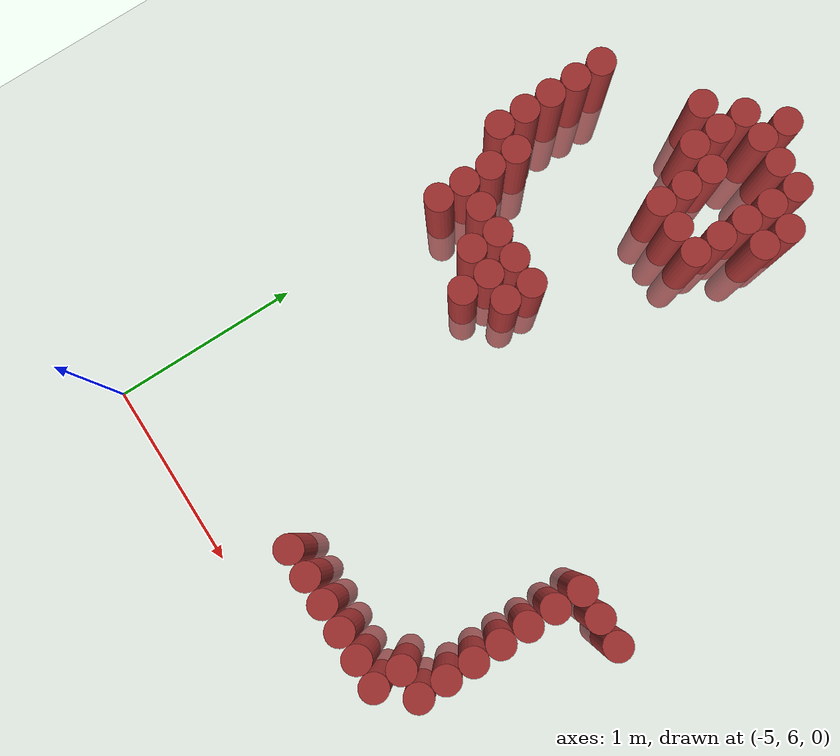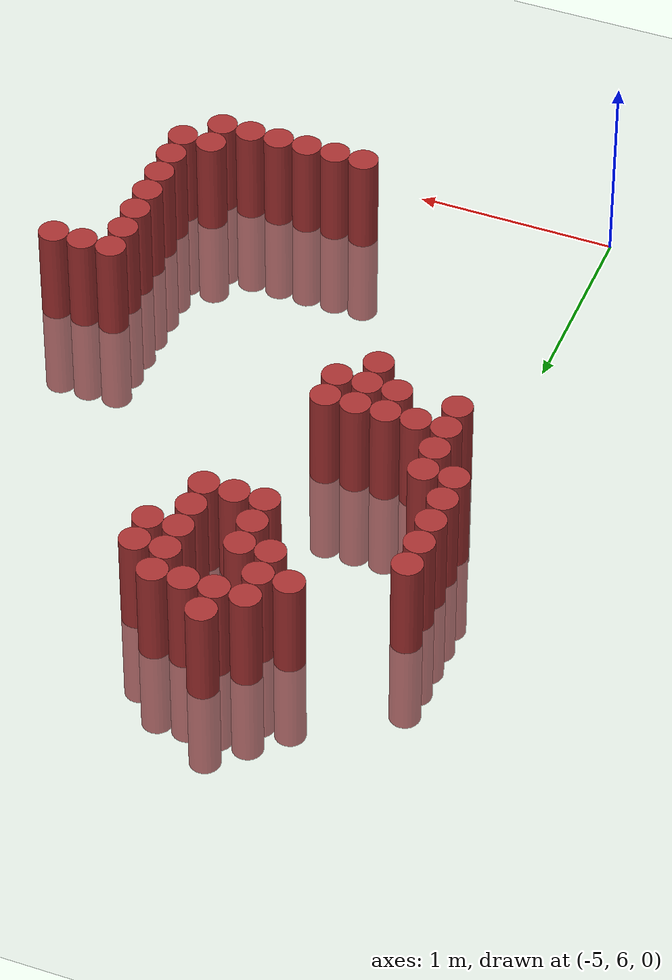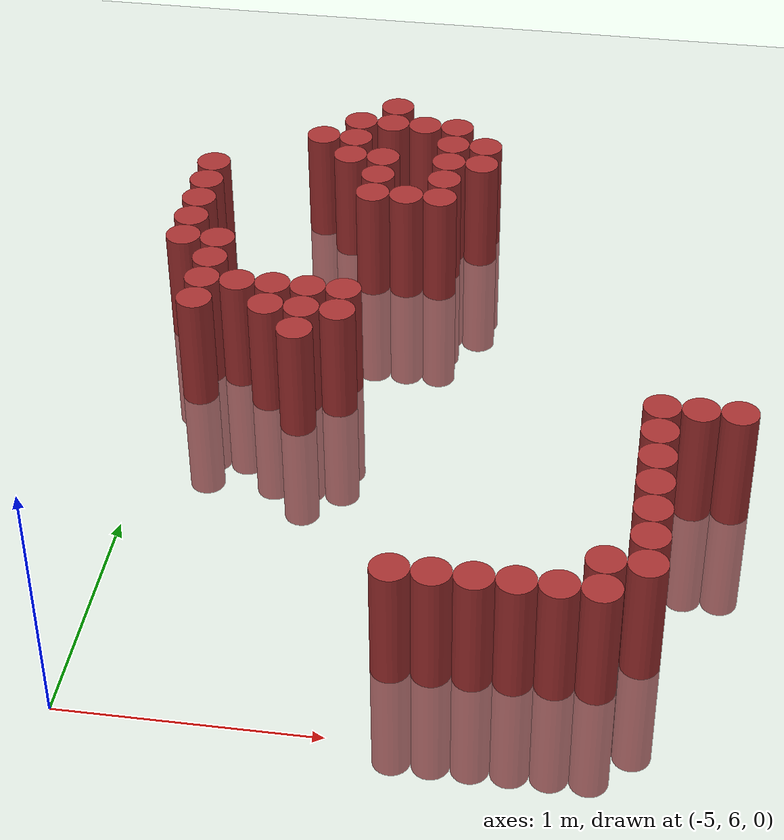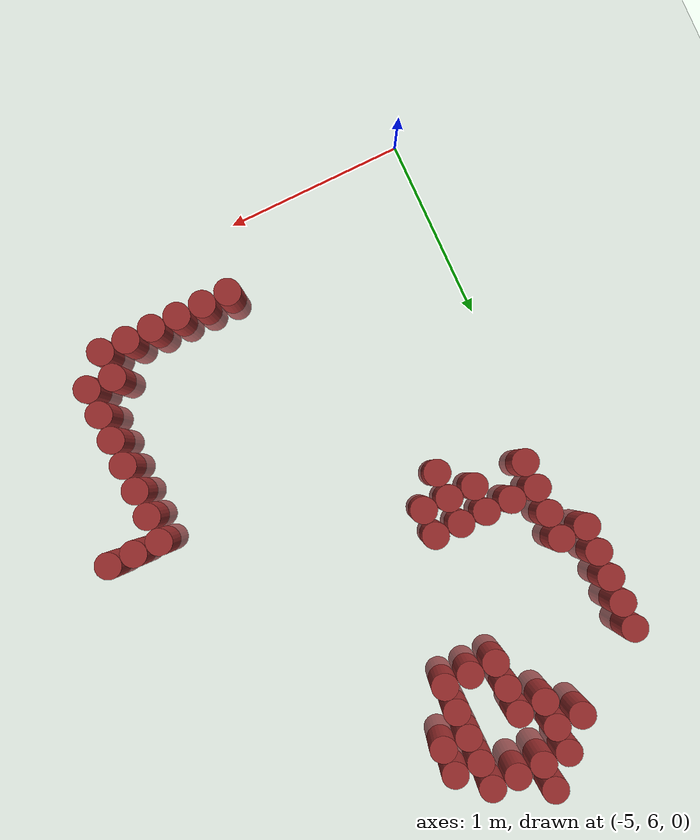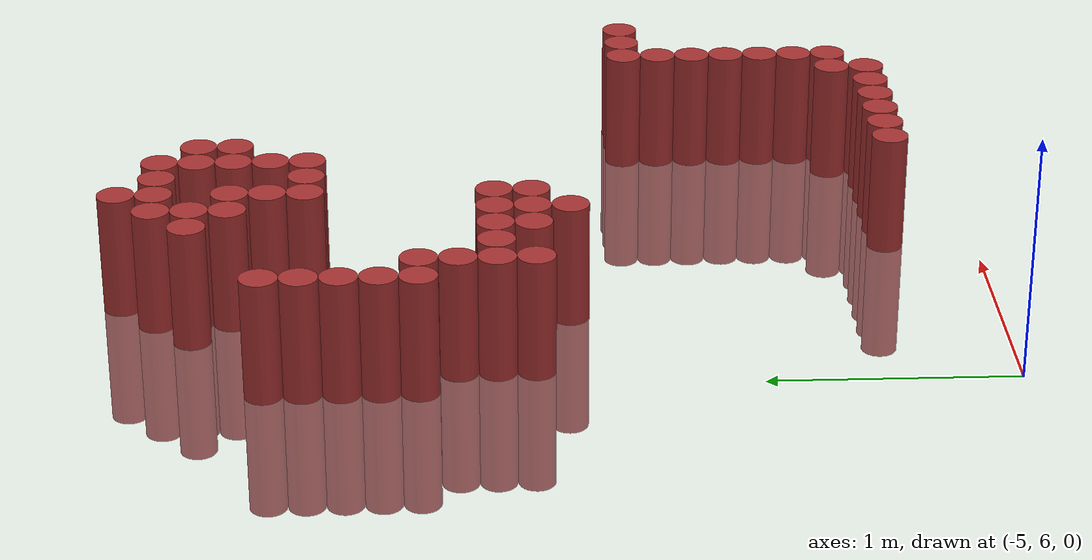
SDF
<sdf version="1.6">
 <world name="default">
  <model name="ground_plane">
   <static>1</static>
   <link name="link">
    <collision name="collision">
     <geometry><plane><normal>0 0 1</normal><size>100 100</size></plane></geometry>
     <surface><friction><ode><mu>100</mu><mu2>50</mu2></ode></friction></surface>
    </collision>
    <visual name="visual">
     <cast_shadows>0</cast_shadows>
     <geometry><plane><normal>0 0 1</normal><size>100 100</size></plane></geometry>
     <material>
      <script><uri>file://media/materials/scripts/gazebo.material</uri><name>Gazebo/Grey</name></script>
     </material>
    </visual>
   </link>
  </model>
  <model name="unit_cylinder_262">
   <static>1</static>
   <pose>-5.025000 8.325000 0.000000 0.000000 0.000000 0.000000</pose>
   <link name="link">
    <inertial>
     <mass>1</mass>
     <inertia><ixx>0.145833</ixx><ixy>0</ixy><ixz>0</ixz><iyy>0.145833</iyy><iyz>0</iyz><izz>0.125</izz></inertia>
    </inertial>
    <collision name="collision">
     <geometry><cylinder><radius>0.075000</radius><length>1</length></cylinder></geometry>
    </collision>
    <visual name="visual">
     <geometry><cylinder><radius>0.075000</radius><length>1</length></cylinder></geometry>
     <material>
      <ambient>0.648000 0.192000 0.192000 1</ambient>
      <diffuse>0.648000 0.192000 0.192000 1</diffuse>
     </material>
     <material>
      <script><name>Gazebo/Grey</name><uri>file://media/materials/scripts/gazebo.material</uri></script>
     </material>
    </visual>
   </link>
  </model>
  <model name="unit_cylinder_263">
   <static>1</static>
   <pose>-5.025000 8.475000 0.000000 0.000000 0.000000 0.000000</pose>
   <link name="link">
    <inertial>
     <mass>1</mass>
     <inertia><ixx>0.145833</ixx><ixy>0</ixy><ixz>0</ixz><iyy>0.145833</iyy><iyz>0</iyz><izz>0.125</izz></inertia>
    </inertial>
    <collision name="collision">
     <geometry><cylinder><radius>0.075000</radius><length>1</length></cylinder></geometry>
    </collision>
    <visual name="visual">
     <geometry><cylinder><radius>0.075000</radius><length>1</length></cylinder></geometry>
     <material>
      <ambient>0.648000 0.192000 0.192000 1</ambient>
      <diffuse>0.648000 0.192000 0.192000 1</diffuse>
     </material>
     <material>
      <script><name>Gazebo/Grey</name><uri>file://media/materials/scripts/gazebo.material</uri></script>
     </material>
    </visual>
   </link>
  </model>
  <model name="unit_cylinder_264">
   <static>1</static>
   <pose>-5.025000 8.625000 0.000000 0.000000 0.000000 0.000000</pose>
   <link name="link">
    <inertial>
     <mass>1</mass>
     <inertia><ixx>0.145833</ixx><ixy>0</ixy><ixz>0</ixz><iyy>0.145833</iyy><iyz>0</iyz><izz>0.125</izz></inertia>
    </inertial>
    <collision name="collision">
     <geometry><cylinder><radius>0.075000</radius><length>1</length></cylinder></geometry>
    </collision>
    <visual name="visual">
     <geometry><cylinder><radius>0.075000</radius><length>1</length></cylinder></geometry>
     <material>
      <ambient>0.648000 0.192000 0.192000 1</ambient>
      <diffuse>0.648000 0.192000 0.192000 1</diffuse>
     </material>
     <material>
      <script><name>Gazebo/Grey</name><uri>file://media/materials/scripts/gazebo.material</uri></script>
     </material>
    </visual>
   </link>
  </model>
  <model name="unit_cylinder_265">
   <static>1</static>
   <pose>-5.025000 8.775000 0.000000 0.000000 0.000000 0.000000</pose>
   <link name="link">
    <inertial>
     <mass>1</mass>
     <inertia><ixx>0.145833</ixx><ixy>0</ixy><ixz>0</ixz><iyy>0.145833</iyy><iyz>0</iyz><izz>0.125</izz></inertia>
    </inertial>
    <collision name="collision">
     <geometry><cylinder><radius>0.075000</radius><length>1</length></cylinder></geometry>
    </collision>
    <visual name="visual">
     <geometry><cylinder><radius>0.075000</radius><length>1</length></cylinder></geometry>
     <material>
      <ambient>0.648000 0.192000 0.192000 1</ambient>
      <diffuse>0.648000 0.192000 0.192000 1</diffuse>
     </material>
     <material>
      <script><name>Gazebo/Grey</name><uri>file://media/materials/scripts/gazebo.material</uri></script>
     </material>
    </visual>
   </link>
  </model>
  <model name="unit_cylinder_266">
   <static>1</static>
   <pose>-5.025000 8.925000 0.000000 0.000000 0.000000 0.000000</pose>
   <link name="link">
    <inertial>
     <mass>1</mass>
     <inertia><ixx>0.145833</ixx><ixy>0</ixy><ixz>0</ixz><iyy>0.145833</iyy><iyz>0</iyz><izz>0.125</izz></inertia>
    </inertial>
    <collision name="collision">
     <geometry><cylinder><radius>0.075000</radius><length>1</length></cylinder></geometry>
    </collision>
    <visual name="visual">
     <geometry><cylinder><radius>0.075000</radius><length>1</length></cylinder></geometry>
     <material>
      <ambient>0.648000 0.192000 0.192000 1</ambient>
      <diffuse>0.648000 0.192000 0.192000 1</diffuse>
     </material>
     <material>
      <script><name>Gazebo/Grey</name><uri>file://media/materials/scripts/gazebo.material</uri></script>
     </material>
    </visual>
   </link>
  </model>
  <model name="unit_cylinder_267">
   <static>1</static>
   <pose>-4.875000 7.875000 0.000000 0.000000 0.000000 0.000000</pose>
   <link name="link">
    <inertial>
     <mass>1</mass>
     <inertia><ixx>0.145833</ixx><ixy>0</ixy><ixz>0</ixz><iyy>0.145833</iyy><iyz>0</iyz><izz>0.125</izz></inertia>
    </inertial>
    <collision name="collision">
     <geometry><cylinder><radius>0.075000</radius><length>1</length></cylinder></geometry>
    </collision>
    <visual name="visual">
     <geometry><cylinder><radius>0.075000</radius><length>1</length></cylinder></geometry>
     <material>
      <ambient>0.648000 0.192000 0.192000 1</ambient>
      <diffuse>0.648000 0.192000 0.192000 1</diffuse>
     </material>
     <material>
      <script><name>Gazebo/Grey</name><uri>file://media/materials/scripts/gazebo.material</uri></script>
     </material>
    </visual>
   </link>
  </model>
  <model name="unit_cylinder_268">
   <static>1</static>
   <pose>-4.875000 8.025000 0.000000 0.000000 0.000000 0.000000</pose>
   <link name="link">
    <inertial>
     <mass>1</mass>
     <inertia><ixx>0.145833</ixx><ixy>0</ixy><ixz>0</ixz><iyy>0.145833</iyy><iyz>0</iyz><izz>0.125</izz></inertia>
    </inertial>
    <collision name="collision">
     <geometry><cylinder><radius>0.075000</radius><length>1</length></cylinder></geometry>
    </collision>
    <visual name="visual">
     <geometry><cylinder><radius>0.075000</radius><length>1</length></cylinder></geometry>
     <material>
      <ambient>0.648000 0.192000 0.192000 1</ambient>
      <diffuse>0.648000 0.192000 0.192000 1</diffuse>
     </material>
     <material>
      <script><name>Gazebo/Grey</name><uri>file://media/materials/scripts/gazebo.material</uri></script>
     </material>
    </visual>
   </link>
  </model>
  <model name="unit_cylinder_269">
   <static>1</static>
   <pose>-4.875000 8.175000 0.000000 0.000000 0.000000 0.000000</pose>
   <link name="link">
    <inertial>
     <mass>1</mass>
     <inertia><ixx>0.145833</ixx><ixy>0</ixy><ixz>0</ixz><iyy>0.145833</iyy><iyz>0</iyz><izz>0.125</izz></inertia>
    </inertial>
    <collision name="collision">
     <geometry><cylinder><radius>0.075000</radius><length>1</length></cylinder></geometry>
    </collision>
    <visual name="visual">
     <geometry><cylinder><radius>0.075000</radius><length>1</length></cylinder></geometry>
     <material>
      <ambient>0.648000 0.192000 0.192000 1</ambient>
      <diffuse>0.648000 0.192000 0.192000 1</diffuse>
     </material>
     <material>
      <script><name>Gazebo/Grey</name><uri>file://media/materials/scripts/gazebo.material</uri></script>
     </material>
    </visual>
   </link>
  </model>
  <model name="unit_cylinder_270">
   <static>1</static>
   <pose>-4.875000 8.325000 0.000000 0.000000 0.000000 0.000000</pose>
   <link name="link">
    <inertial>
     <mass>1</mass>
     <inertia><ixx>0.145833</ixx><ixy>0</ixy><ixz>0</ixz><iyy>0.145833</iyy><iyz>0</iyz><izz>0.125</izz></inertia>
    </inertial>
    <collision name="collision">
     <geometry><cylinder><radius>0.075000</radius><length>1</length></cylinder></geometry>
    </collision>
    <visual name="visual">
     <geometry><cylinder><radius>0.075000</radius><length>1</length></cylinder></geometry>
     <material>
      <ambient>0.648000 0.192000 0.192000 1</ambient>
      <diffuse>0.648000 0.192000 0.192000 1</diffuse>
     </material>
     <material>
      <script><name>Gazebo/Grey</name><uri>file://media/materials/scripts/gazebo.material</uri></script>
     </material>
    </visual>
   </link>
  </model>
  <model name="unit_cylinder_271">
   <static>1</static>
   <pose>-4.725000 8.025000 0.000000 0.000000 0.000000 0.000000</pose>
   <link name="link">
    <inertial>
     <mass>1</mass>
     <inertia><ixx>0.145833</ixx><ixy>0</ixy><ixz>0</ixz><iyy>0.145833</iyy><iyz>0</iyz><izz>0.125</izz></inertia>
    </inertial>
    <collision name="collision">
     <geometry><cylinder><radius>0.075000</radius><length>1</length></cylinder></geometry>
    </collision>
    <visual name="visual">
     <geometry><cylinder><radius>0.075000</radius><length>1</length></cylinder></geometry>
     <material>
      <ambient>0.648000 0.192000 0.192000 1</ambient>
      <diffuse>0.648000 0.192000 0.192000 1</diffuse>
     </material>
     <material>
      <script><name>Gazebo/Grey</name><uri>file://media/materials/scripts/gazebo.material</uri></script>
     </material>
    </visual>
   </link>
  </model>
  <model name="unit_cylinder_272">
   <static>1</static>
   <pose>-4.575000 7.875000 0.000000 0.000000 0.000000 0.000000</pose>
   <link name="link">
    <inertial>
     <mass>1</mass>
     <inertia><ixx>0.145833</ixx><ixy>0</ixy><ixz>0</ixz><iyy>0.145833</iyy><iyz>0</iyz><izz>0.125</izz></inertia>
    </inertial>
    <collision name="collision">
     <geometry><cylinder><radius>0.075000</radius><length>1</length></cylinder></geometry>
    </collision>
    <visual name="visual">
     <geometry><cylinder><radius>0.075000</radius><length>1</length></cylinder></geometry>
     <material>
      <ambient>0.648000 0.192000 0.192000 1</ambient>
      <diffuse>0.648000 0.192000 0.192000 1</diffuse>
     </material>
     <material>
      <script><name>Gazebo/Grey</name><uri>file://media/materials/scripts/gazebo.material</uri></script>
     </material>
    </visual>
   </link>
  </model>
  <model name="unit_cylinder_273">
   <static>1</static>
   <pose>-4.575000 8.025000 0.000000 0.000000 0.000000 0.000000</pose>
   <link name="link">
    <inertial>
     <mass>1</mass>
     <inertia><ixx>0.145833</ixx><ixy>0</ixy><ixz>0</ixz><iyy>0.145833</iyy><iyz>0</iyz><izz>0.125</izz></inertia>
    </inertial>
    <collision name="collision">
     <geometry><cylinder><radius>0.075000</radius><length>1</length></cylinder></geometry>
    </collision>
    <visual name="visual">
     <geometry><cylinder><radius>0.075000</radius><length>1</length></cylinder></geometry>
     <material>
      <ambient>0.648000 0.192000 0.192000 1</ambient>
      <diffuse>0.648000 0.192000 0.192000 1</diffuse>
     </material>
     <material>
      <script><name>Gazebo/Grey</name><uri>file://media/materials/scripts/gazebo.material</uri></script>
     </material>
    </visual>
   </link>
  </model>
  <model name="unit_cylinder_274">
   <static>1</static>
   <pose>-4.575000 9.225000 0.000000 0.000000 0.000000 0.000000</pose>
   <link name="link">
    <inertial>
     <mass>1</mass>
     <inertia><ixx>0.145833</ixx><ixy>0</ixy><ixz>0</ixz><iyy>0.145833</iyy><iyz>0</iyz><izz>0.125</izz></inertia>
    </inertial>
    <collision name="collision">
     <geometry><cylinder><radius>0.075000</radius><length>1</length></cylinder></geometry>
    </collision>
    <visual name="visual">
     <geometry><cylinder><radius>0.075000</radius><length>1</length></cylinder></geometry>
     <material>
      <ambient>0.648000 0.192000 0.192000 1</ambient>
      <diffuse>0.648000 0.192000 0.192000 1</diffuse>
     </material>
     <material>
      <script><name>Gazebo/Grey</name><uri>file://media/materials/scripts/gazebo.material</uri></script>
     </material>
    </visual>
   </link>
  </model>
  <model name="unit_cylinder_275">
   <static>1</static>
   <pose>-4.425000 7.725000 0.000000 0.000000 0.000000 0.000000</pose>
   <link name="link">
    <inertial>
     <mass>1</mass>
     <inertia><ixx>0.145833</ixx><ixy>0</ixy><ixz>0</ixz><iyy>0.145833</iyy><iyz>0</iyz><izz>0.125</izz></inertia>
    </inertial>
    <collision name="collision">
     <geometry><cylinder><radius>0.075000</radius><length>1</length></cylinder></geometry>
    </collision>
    <visual name="visual">
     <geometry><cylinder><radius>0.075000</radius><length>1</length></cylinder></geometry>
     <material>
      <ambient>0.648000 0.192000 0.192000 1</ambient>
      <diffuse>0.648000 0.192000 0.192000 1</diffuse>
     </material>
     <material>
      <script><name>Gazebo/Grey</name><uri>file://media/materials/scripts/gazebo.material</uri></script>
     </material>
    </visual>
   </link>
  </model>
  <model name="unit_cylinder_276">
   <static>1</static>
   <pose>-4.425000 7.875000 0.000000 0.000000 0.000000 0.000000</pose>
   <link name="link">
    <inertial>
     <mass>1</mass>
     <inertia><ixx>0.145833</ixx><ixy>0</ixy><ixz>0</ixz><iyy>0.145833</iyy><iyz>0</iyz><izz>0.125</izz></inertia>
    </inertial>
    <collision name="collision">
     <geometry><cylinder><radius>0.075000</radius><length>1</length></cylinder></geometry>
    </collision>
    <visual name="visual">
     <geometry><cylinder><radius>0.075000</radius><length>1</length></cylinder></geometry>
     <material>
      <ambient>0.648000 0.192000 0.192000 1</ambient>
      <diffuse>0.648000 0.192000 0.192000 1</diffuse>
     </material>
     <material>
      <script><name>Gazebo/Grey</name><uri>file://media/materials/scripts/gazebo.material</uri></script>
     </material>
    </visual>
   </link>
  </model>
  <model name="unit_cylinder_277">
   <static>1</static>
   <pose>-4.425000 8.025000 0.000000 0.000000 0.000000 0.000000</pose>
   <link name="link">
    <inertial>
     <mass>1</mass>
     <inertia><ixx>0.145833</ixx><ixy>0</ixy><ixz>0</ixz><iyy>0.145833</iyy><iyz>0</iyz><izz>0.125</izz></inertia>
    </inertial>
    <collision name="collision">
     <geometry><cylinder><radius>0.075000</radius><length>1</length></cylinder></geometry>
    </collision>
    <visual name="visual">
     <geometry><cylinder><radius>0.075000</radius><length>1</length></cylinder></geometry>
     <material>
      <ambient>0.648000 0.192000 0.192000 1</ambient>
      <diffuse>0.648000 0.192000 0.192000 1</diffuse>
     </material>
     <material>
      <script><name>Gazebo/Grey</name><uri>file://media/materials/scripts/gazebo.material</uri></script>
     </material>
    </visual>
   </link>
  </model>
  <model name="unit_cylinder_278">
   <static>1</static>
   <pose>-4.425000 9.075000 0.000000 0.000000 0.000000 0.000000</pose>
   <link name="link">
    <inertial>
     <mass>1</mass>
     <inertia><ixx>0.145833</ixx><ixy>0</ixy><ixz>0</ixz><iyy>0.145833</iyy><iyz>0</iyz><izz>0.125</izz></inertia>
    </inertial>
    <collision name="collision">
     <geometry><cylinder><radius>0.075000</radius><length>1</length></cylinder></geometry>
    </collision>
    <visual name="visual">
     <geometry><cylinder><radius>0.075000</radius><length>1</length></cylinder></geometry>
     <material>
      <ambient>0.648000 0.192000 0.192000 1</ambient>
      <diffuse>0.648000 0.192000 0.192000 1</diffuse>
     </material>
     <material>
      <script><name>Gazebo/Grey</name><uri>file://media/materials/scripts/gazebo.material</uri></script>
     </material>
    </visual>
   </link>
  </model>
  <model name="unit_cylinder_279">
   <static>1</static>
   <pose>-4.425000 9.225000 0.000000 0.000000 0.000000 0.000000</pose>
   <link name="link">
    <inertial>
     <mass>1</mass>
     <inertia><ixx>0.145833</ixx><ixy>0</ixy><ixz>0</ixz><iyy>0.145833</iyy><iyz>0</iyz><izz>0.125</izz></inertia>
    </inertial>
    <collision name="collision">
     <geometry><cylinder><radius>0.075000</radius><length>1</length></cylinder></geometry>
    </collision>
    <visual name="visual">
     <geometry><cylinder><radius>0.075000</radius><length>1</length></cylinder></geometry>
     <material>
      <ambient>0.648000 0.192000 0.192000 1</ambient>
      <diffuse>0.648000 0.192000 0.192000 1</diffuse>
     </material>
     <material>
      <script><name>Gazebo/Grey</name><uri>file://media/materials/scripts/gazebo.material</uri></script>
     </material>
    </visual>
   </link>
  </model>
  <model name="unit_cylinder_280">
   <static>1</static>
   <pose>-4.425000 9.375000 0.000000 0.000000 0.000000 0.000000</pose>
   <link name="link">
    <inertial>
     <mass>1</mass>
     <inertia><ixx>0.145833</ixx><ixy>0</ixy><ixz>0</ixz><iyy>0.145833</iyy><iyz>0</iyz><izz>0.125</izz></inertia>
    </inertial>
    <collision name="collision">
     <geometry><cylinder><radius>0.075000</radius><length>1</length></cylinder></geometry>
    </collision>
    <visual name="visual">
     <geometry><cylinder><radius>0.075000</radius><length>1</length></cylinder></geometry>
     <material>
      <ambient>0.648000 0.192000 0.192000 1</ambient>
      <diffuse>0.648000 0.192000 0.192000 1</diffuse>
     </material>
     <material>
      <script><name>Gazebo/Grey</name><uri>file://media/materials/scripts/gazebo.material</uri></script>
     </material>
    </visual>
   </link>
  </model>
  <model name="unit_cylinder_283">
   <static>1</static>
   <pose>-4.275000 7.875000 0.000000 0.000000 0.000000 0.000000</pose>
   <link name="link">
    <inertial>
     <mass>1</mass>
     <inertia><ixx>0.145833</ixx><ixy>0</ixy><ixz>0</ixz><iyy>0.145833</iyy><iyz>0</iyz><izz>0.125</izz></inertia>
    </inertial>
    <collision name="collision">
     <geometry><cylinder><radius>0.075000</radius><length>1</length></cylinder></geometry>
    </collision>
    <visual name="visual">
     <geometry><cylinder><radius>0.075000</radius><length>1</length></cylinder></geometry>
     <material>
      <ambient>0.648000 0.192000 0.192000 1</ambient>
      <diffuse>0.648000 0.192000 0.192000 1</diffuse>
     </material>
     <material>
      <script><name>Gazebo/Grey</name><uri>file://media/materials/scripts/gazebo.material</uri></script>
     </material>
    </visual>
   </link>
  </model>
  <model name="unit_cylinder_284">
   <static>1</static>
   <pose>-4.275000 8.025000 0.000000 0.000000 0.000000 0.000000</pose>
   <link name="link">
    <inertial>
     <mass>1</mass>
     <inertia><ixx>0.145833</ixx><ixy>0</ixy><ixz>0</ixz><iyy>0.145833</iyy><iyz>0</iyz><izz>0.125</izz></inertia>
    </inertial>
    <collision name="collision">
     <geometry><cylinder><radius>0.075000</radius><length>1</length></cylinder></geometry>
    </collision>
    <visual name="visual">
     <geometry><cylinder><radius>0.075000</radius><length>1</length></cylinder></geometry>
     <material>
      <ambient>0.648000 0.192000 0.192000 1</ambient>
      <diffuse>0.648000 0.192000 0.192000 1</diffuse>
     </material>
     <material>
      <script><name>Gazebo/Grey</name><uri>file://media/materials/scripts/gazebo.material</uri></script>
     </material>
    </visual>
   </link>
  </model>
  <model name="unit_cylinder_285">
   <static>1</static>
   <pose>-4.275000 8.775000 0.000000 0.000000 0.000000 0.000000</pose>
   <link name="link">
    <inertial>
     <mass>1</mass>
     <inertia><ixx>0.145833</ixx><ixy>0</ixy><ixz>0</ixz><iyy>0.145833</iyy><iyz>0</iyz><izz>0.125</izz></inertia>
    </inertial>
    <collision name="collision">
     <geometry><cylinder><radius>0.075000</radius><length>1</length></cylinder></geometry>
    </collision>
    <visual name="visual">
     <geometry><cylinder><radius>0.075000</radius><length>1</length></cylinder></geometry>
     <material>
      <ambient>0.648000 0.192000 0.192000 1</ambient>
      <diffuse>0.648000 0.192000 0.192000 1</diffuse>
     </material>
     <material>
      <script><name>Gazebo/Grey</name><uri>file://media/materials/scripts/gazebo.material</uri></script>
     </material>
    </visual>
   </link>
  </model>
  <model name="unit_cylinder_286">
   <static>1</static>
   <pose>-4.275000 8.925000 0.000000 0.000000 0.000000 0.000000</pose>
   <link name="link">
    <inertial>
     <mass>1</mass>
     <inertia><ixx>0.145833</ixx><ixy>0</ixy><ixz>0</ixz><iyy>0.145833</iyy><iyz>0</iyz><izz>0.125</izz></inertia>
    </inertial>
    <collision name="collision">
     <geometry><cylinder><radius>0.075000</radius><length>1</length></cylinder></geometry>
    </collision>
    <visual name="visual">
     <geometry><cylinder><radius>0.075000</radius><length>1</length></cylinder></geometry>
     <material>
      <ambient>0.648000 0.192000 0.192000 1</ambient>
      <diffuse>0.648000 0.192000 0.192000 1</diffuse>
     </material>
     <material>
      <script><name>Gazebo/Grey</name><uri>file://media/materials/scripts/gazebo.material</uri></script>
     </material>
    </visual>
   </link>
  </model>
  <model name="unit_cylinder_287">
   <static>1</static>
   <pose>-4.275000 9.075000 0.000000 0.000000 0.000000 0.000000</pose>
   <link name="link">
    <inertial>
     <mass>1</mass>
     <inertia><ixx>0.145833</ixx><ixy>0</ixy><ixz>0</ixz><iyy>0.145833</iyy><iyz>0</iyz><izz>0.125</izz></inertia>
    </inertial>
    <collision name="collision">
     <geometry><cylinder><radius>0.075000</radius><length>1</length></cylinder></geometry>
    </collision>
    <visual name="visual">
     <geometry><cylinder><radius>0.075000</radius><length>1</length></cylinder></geometry>
     <material>
      <ambient>0.648000 0.192000 0.192000 1</ambient>
      <diffuse>0.648000 0.192000 0.192000 1</diffuse>
     </material>
     <material>
      <script><name>Gazebo/Grey</name><uri>file://media/materials/scripts/gazebo.material</uri></script>
     </material>
    </visual>
   </link>
  </model>
  <model name="unit_cylinder_288">
   <static>1</static>
   <pose>-4.275000 9.375000 0.000000 0.000000 0.000000 0.000000</pose>
   <link name="link">
    <inertial>
     <mass>1</mass>
     <inertia><ixx>0.145833</ixx><ixy>0</ixy><ixz>0</ixz><iyy>0.145833</iyy><iyz>0</iyz><izz>0.125</izz></inertia>
    </inertial>
    <collision name="collision">
     <geometry><cylinder><radius>0.075000</radius><length>1</length></cylinder></geometry>
    </collision>
    <visual name="visual">
     <geometry><cylinder><radius>0.075000</radius><length>1</length></cylinder></geometry>
     <material>
      <ambient>0.648000 0.192000 0.192000 1</ambient>
      <diffuse>0.648000 0.192000 0.192000 1</diffuse>
     </material>
     <material>
      <script><name>Gazebo/Grey</name><uri>file://media/materials/scripts/gazebo.material</uri></script>
     </material>
    </visual>
   </link>
  </model>
  <model name="unit_cylinder_289">
   <static>1</static>
   <pose>-4.275000 9.525000 0.000000 0.000000 0.000000 0.000000</pose>
   <link name="link">
    <inertial>
     <mass>1</mass>
     <inertia><ixx>0.145833</ixx><ixy>0</ixy><ixz>0</ixz><iyy>0.145833</iyy><iyz>0</iyz><izz>0.125</izz></inertia>
    </inertial>
    <collision name="collision">
     <geometry><cylinder><radius>0.075000</radius><length>1</length></cylinder></geometry>
    </collision>
    <visual name="visual">
     <geometry><cylinder><radius>0.075000</radius><length>1</length></cylinder></geometry>
     <material>
      <ambient>0.648000 0.192000 0.192000 1</ambient>
      <diffuse>0.648000 0.192000 0.192000 1</diffuse>
     </material>
     <material>
      <script><name>Gazebo/Grey</name><uri>file://media/materials/scripts/gazebo.material</uri></script>
     </material>
    </visual>
   </link>
  </model>
  <model name="unit_cylinder_292">
   <static>1</static>
   <pose>-4.125000 8.775000 0.000000 0.000000 0.000000 0.000000</pose>
   <link name="link">
    <inertial>
     <mass>1</mass>
     <inertia><ixx>0.145833</ixx><ixy>0</ixy><ixz>0</ixz><iyy>0.145833</iyy><iyz>0</iyz><izz>0.125</izz></inertia>
    </inertial>
    <collision name="collision">
     <geometry><cylinder><radius>0.075000</radius><length>1</length></cylinder></geometry>
    </collision>
    <visual name="visual">
     <geometry><cylinder><radius>0.075000</radius><length>1</length></cylinder></geometry>
     <material>
      <ambient>0.648000 0.192000 0.192000 1</ambient>
      <diffuse>0.648000 0.192000 0.192000 1</diffuse>
     </material>
     <material>
      <script><name>Gazebo/Grey</name><uri>file://media/materials/scripts/gazebo.material</uri></script>
     </material>
    </visual>
   </link>
  </model>
  <model name="unit_cylinder_293">
   <static>1</static>
   <pose>-4.125000 9.375000 0.000000 0.000000 0.000000 0.000000</pose>
   <link name="link">
    <inertial>
     <mass>1</mass>
     <inertia><ixx>0.145833</ixx><ixy>0</ixy><ixz>0</ixz><iyy>0.145833</iyy><iyz>0</iyz><izz>0.125</izz></inertia>
    </inertial>
    <collision name="collision">
     <geometry><cylinder><radius>0.075000</radius><length>1</length></cylinder></geometry>
    </collision>
    <visual name="visual">
     <geometry><cylinder><radius>0.075000</radius><length>1</length></cylinder></geometry>
     <material>
      <ambient>0.648000 0.192000 0.192000 1</ambient>
      <diffuse>0.648000 0.192000 0.192000 1</diffuse>
     </material>
     <material>
      <script><name>Gazebo/Grey</name><uri>file://media/materials/scripts/gazebo.material</uri></script>
     </material>
    </visual>
   </link>
  </model>
  <model name="unit_cylinder_297">
   <static>1</static>
   <pose>-3.975000 8.775000 0.000000 0.000000 0.000000 0.000000</pose>
   <link name="link">
    <inertial>
     <mass>1</mass>
     <inertia><ixx>0.145833</ixx><ixy>0</ixy><ixz>0</ixz><iyy>0.145833</iyy><iyz>0</iyz><izz>0.125</izz></inertia>
    </inertial>
    <collision name="collision">
     <geometry><cylinder><radius>0.075000</radius><length>1</length></cylinder></geometry>
    </collision>
    <visual name="visual">
     <geometry><cylinder><radius>0.075000</radius><length>1</length></cylinder></geometry>
     <material>
      <ambient>0.648000 0.192000 0.192000 1</ambient>
      <diffuse>0.648000 0.192000 0.192000 1</diffuse>
     </material>
     <material>
      <script><name>Gazebo/Grey</name><uri>file://media/materials/scripts/gazebo.material</uri></script>
     </material>
    </visual>
   </link>
  </model>
  <model name="unit_cylinder_298">
   <static>1</static>
   <pose>-3.975000 8.925000 0.000000 0.000000 0.000000 0.000000</pose>
   <link name="link">
    <inertial>
     <mass>1</mass>
     <inertia><ixx>0.145833</ixx><ixy>0</ixy><ixz>0</ixz><iyy>0.145833</iyy><iyz>0</iyz><izz>0.125</izz></inertia>
    </inertial>
    <collision name="collision">
     <geometry><cylinder><radius>0.075000</radius><length>1</length></cylinder></geometry>
    </collision>
    <visual name="visual">
     <geometry><cylinder><radius>0.075000</radius><length>1</length></cylinder></geometry>
     <material>
      <ambient>0.648000 0.192000 0.192000 1</ambient>
      <diffuse>0.648000 0.192000 0.192000 1</diffuse>
     </material>
     <material>
      <script><name>Gazebo/Grey</name><uri>file://media/materials/scripts/gazebo.material</uri></script>
     </material>
    </visual>
   </link>
  </model>
  <model name="unit_cylinder_299">
   <static>1</static>
   <pose>-3.975000 9.075000 0.000000 0.000000 0.000000 0.000000</pose>
   <link name="link">
    <inertial>
     <mass>1</mass>
     <inertia><ixx>0.145833</ixx><ixy>0</ixy><ixz>0</ixz><iyy>0.145833</iyy><iyz>0</iyz><izz>0.125</izz></inertia>
    </inertial>
    <collision name="collision">
     <geometry><cylinder><radius>0.075000</radius><length>1</length></cylinder></geometry>
    </collision>
    <visual name="visual">
     <geometry><cylinder><radius>0.075000</radius><length>1</length></cylinder></geometry>
     <material>
      <ambient>0.648000 0.192000 0.192000 1</ambient>
      <diffuse>0.648000 0.192000 0.192000 1</diffuse>
     </material>
     <material>
      <script><name>Gazebo/Grey</name><uri>file://media/materials/scripts/gazebo.material</uri></script>
     </material>
    </visual>
   </link>
  </model>
  <model name="unit_cylinder_300">
   <static>1</static>
   <pose>-3.975000 9.225000 0.000000 0.000000 0.000000 0.000000</pose>
   <link name="link">
    <inertial>
     <mass>1</mass>
     <inertia><ixx>0.145833</ixx><ixy>0</ixy><ixz>0</ixz><iyy>0.145833</iyy><iyz>0</iyz><izz>0.125</izz></inertia>
    </inertial>
    <collision name="collision">
     <geometry><cylinder><radius>0.075000</radius><length>1</length></cylinder></geometry>
    </collision>
    <visual name="visual">
     <geometry><cylinder><radius>0.075000</radius><length>1</length></cylinder></geometry>
     <material>
      <ambient>0.648000 0.192000 0.192000 1</ambient>
      <diffuse>0.648000 0.192000 0.192000 1</diffuse>
     </material>
     <material>
      <script><name>Gazebo/Grey</name><uri>file://media/materials/scripts/gazebo.material</uri></script>
     </material>
    </visual>
   </link>
  </model>
  <model name="unit_cylinder_301">
   <static>1</static>
   <pose>-3.975000 9.375000 0.000000 0.000000 0.000000 0.000000</pose>
   <link name="link">
    <inertial>
     <mass>1</mass>
     <inertia><ixx>0.145833</ixx><ixy>0</ixy><ixz>0</ixz><iyy>0.145833</iyy><iyz>0</iyz><izz>0.125</izz></inertia>
    </inertial>
    <collision name="collision">
     <geometry><cylinder><radius>0.075000</radius><length>1</length></cylinder></geometry>
    </collision>
    <visual name="visual">
     <geometry><cylinder><radius>0.075000</radius><length>1</length></cylinder></geometry>
     <material>
      <ambient>0.648000 0.192000 0.192000 1</ambient>
      <diffuse>0.648000 0.192000 0.192000 1</diffuse>
     </material>
     <material>
      <script><name>Gazebo/Grey</name><uri>file://media/materials/scripts/gazebo.material</uri></script>
     </material>
    </visual>
   </link>
  </model>
  <model name="unit_cylinder_309">
   <static>1</static>
   <pose>-3.825000 6.375000 0.000000 0.000000 0.000000 0.000000</pose>
   <link name="link">
    <inertial>
     <mass>1</mass>
     <inertia><ixx>0.145833</ixx><ixy>0</ixy><ixz>0</ixz><iyy>0.145833</iyy><iyz>0</iyz><izz>0.125</izz></inertia>
    </inertial>
    <collision name="collision">
     <geometry><cylinder><radius>0.075000</radius><length>1</length></cylinder></geometry>
    </collision>
    <visual name="visual">
     <geometry><cylinder><radius>0.075000</radius><length>1</length></cylinder></geometry>
     <material>
      <ambient>0.648000 0.192000 0.192000 1</ambient>
      <diffuse>0.648000 0.192000 0.192000 1</diffuse>
     </material>
     <material>
      <script><name>Gazebo/Grey</name><uri>file://media/materials/scripts/gazebo.material</uri></script>
     </material>
    </visual>
   </link>
  </model>
  <model name="unit_cylinder_310">
   <static>1</static>
   <pose>-3.825000 9.075000 0.000000 0.000000 0.000000 0.000000</pose>
   <link name="link">
    <inertial>
     <mass>1</mass>
     <inertia><ixx>0.145833</ixx><ixy>0</ixy><ixz>0</ixz><iyy>0.145833</iyy><iyz>0</iyz><izz>0.125</izz></inertia>
    </inertial>
    <collision name="collision">
     <geometry><cylinder><radius>0.075000</radius><length>1</length></cylinder></geometry>
    </collision>
    <visual name="visual">
     <geometry><cylinder><radius>0.075000</radius><length>1</length></cylinder></geometry>
     <material>
      <ambient>0.648000 0.192000 0.192000 1</ambient>
      <diffuse>0.648000 0.192000 0.192000 1</diffuse>
     </material>
     <material>
      <script><name>Gazebo/Grey</name><uri>file://media/materials/scripts/gazebo.material</uri></script>
     </material>
    </visual>
   </link>
  </model>
  <model name="unit_cylinder_311">
   <static>1</static>
   <pose>-3.825000 9.225000 0.000000 0.000000 0.000000 0.000000</pose>
   <link name="link">
    <inertial>
     <mass>1</mass>
     <inertia><ixx>0.145833</ixx><ixy>0</ixy><ixz>0</ixz><iyy>0.145833</iyy><iyz>0</iyz><izz>0.125</izz></inertia>
    </inertial>
    <collision name="collision">
     <geometry><cylinder><radius>0.075000</radius><length>1</length></cylinder></geometry>
    </collision>
    <visual name="visual">
     <geometry><cylinder><radius>0.075000</radius><length>1</length></cylinder></geometry>
     <material>
      <ambient>0.648000 0.192000 0.192000 1</ambient>
      <diffuse>0.648000 0.192000 0.192000 1</diffuse>
     </material>
     <material>
      <script><name>Gazebo/Grey</name><uri>file://media/materials/scripts/gazebo.material</uri></script>
     </material>
    </visual>
   </link>
  </model>
  <model name="unit_cylinder_313">
   <static>1</static>
   <pose>-3.675000 6.375000 0.000000 0.000000 0.000000 0.000000</pose>
   <link name="link">
    <inertial>
     <mass>1</mass>
     <inertia><ixx>0.145833</ixx><ixy>0</ixy><ixz>0</ixz><iyy>0.145833</iyy><iyz>0</iyz><izz>0.125</izz></inertia>
    </inertial>
    <collision name="collision">
     <geometry><cylinder><radius>0.075000</radius><length>1</length></cylinder></geometry>
    </collision>
    <visual name="visual">
     <geometry><cylinder><radius>0.075000</radius><length>1</length></cylinder></geometry>
     <material>
      <ambient>0.648000 0.192000 0.192000 1</ambient>
      <diffuse>0.648000 0.192000 0.192000 1</diffuse>
     </material>
     <material>
      <script><name>Gazebo/Grey</name><uri>file://media/materials/scripts/gazebo.material</uri></script>
     </material>
    </visual>
   </link>
  </model>
  <model name="unit_cylinder_315">
   <static>1</static>
   <pose>-3.525000 6.375000 0.000000 0.000000 0.000000 0.000000</pose>
   <link name="link">
    <inertial>
     <mass>1</mass>
     <inertia><ixx>0.145833</ixx><ixy>0</ixy><ixz>0</ixz><iyy>0.145833</iyy><iyz>0</iyz><izz>0.125</izz></inertia>
    </inertial>
    <collision name="collision">
     <geometry><cylinder><radius>0.075000</radius><length>1</length></cylinder></geometry>
    </collision>
    <visual name="visual">
     <geometry><cylinder><radius>0.075000</radius><length>1</length></cylinder></geometry>
     <material>
      <ambient>0.648000 0.192000 0.192000 1</ambient>
      <diffuse>0.648000 0.192000 0.192000 1</diffuse>
     </material>
     <material>
      <script><name>Gazebo/Grey</name><uri>file://media/materials/scripts/gazebo.material</uri></script>
     </material>
    </visual>
   </link>
  </model>
  <model name="unit_cylinder_317">
   <static>1</static>
   <pose>-3.375000 6.375000 0.000000 0.000000 0.000000 0.000000</pose>
   <link name="link">
    <inertial>
     <mass>1</mass>
     <inertia><ixx>0.145833</ixx><ixy>0</ixy><ixz>0</ixz><iyy>0.145833</iyy><iyz>0</iyz><izz>0.125</izz></inertia>
    </inertial>
    <collision name="collision">
     <geometry><cylinder><radius>0.075000</radius><length>1</length></cylinder></geometry>
    </collision>
    <visual name="visual">
     <geometry><cylinder><radius>0.075000</radius><length>1</length></cylinder></geometry>
     <material>
      <ambient>0.648000 0.192000 0.192000 1</ambient>
      <diffuse>0.648000 0.192000 0.192000 1</diffuse>
     </material>
     <material>
      <script><name>Gazebo/Grey</name><uri>file://media/materials/scripts/gazebo.material</uri></script>
     </material>
    </visual>
   </link>
  </model>
  <model name="unit_cylinder_319">
   <static>1</static>
   <pose>-3.225000 6.375000 0.000000 0.000000 0.000000 0.000000</pose>
   <link name="link">
    <inertial>
     <mass>1</mass>
     <inertia><ixx>0.145833</ixx><ixy>0</ixy><ixz>0</ixz><iyy>0.145833</iyy><iyz>0</iyz><izz>0.125</izz></inertia>
    </inertial>
    <collision name="collision">
     <geometry><cylinder><radius>0.075000</radius><length>1</length></cylinder></geometry>
    </collision>
    <visual name="visual">
     <geometry><cylinder><radius>0.075000</radius><length>1</length></cylinder></geometry>
     <material>
      <ambient>0.648000 0.192000 0.192000 1</ambient>
      <diffuse>0.648000 0.192000 0.192000 1</diffuse>
     </material>
     <material>
      <script><name>Gazebo/Grey</name><uri>file://media/materials/scripts/gazebo.material</uri></script>
     </material>
    </visual>
   </link>
  </model>
  <model name="unit_cylinder_321">
   <static>1</static>
   <pose>-3.075000 6.375000 0.000000 0.000000 0.000000 0.000000</pose>
   <link name="link">
    <inertial>
     <mass>1</mass>
     <inertia><ixx>0.145833</ixx><ixy>0</ixy><ixz>0</ixz><iyy>0.145833</iyy><iyz>0</iyz><izz>0.125</izz></inertia>
    </inertial>
    <collision name="collision">
     <geometry><cylinder><radius>0.075000</radius><length>1</length></cylinder></geometry>
    </collision>
    <visual name="visual">
     <geometry><cylinder><radius>0.075000</radius><length>1</length></cylinder></geometry>
     <material>
      <ambient>0.648000 0.192000 0.192000 1</ambient>
      <diffuse>0.648000 0.192000 0.192000 1</diffuse>
     </material>
     <material>
      <script><name>Gazebo/Grey</name><uri>file://media/materials/scripts/gazebo.material</uri></script>
     </material>
    </visual>
   </link>
  </model>
  <model name="unit_cylinder_322">
   <static>1</static>
   <pose>-3.075000 6.525000 0.000000 0.000000 0.000000 0.000000</pose>
   <link name="link">
    <inertial>
     <mass>1</mass>
     <inertia><ixx>0.145833</ixx><ixy>0</ixy><ixz>0</ixz><iyy>0.145833</iyy><iyz>0</iyz><izz>0.125</izz></inertia>
    </inertial>
    <collision name="collision">
     <geometry><cylinder><radius>0.075000</radius><length>1</length></cylinder></geometry>
    </collision>
    <visual name="visual">
     <geometry><cylinder><radius>0.075000</radius><length>1</length></cylinder></geometry>
     <material>
      <ambient>0.648000 0.192000 0.192000 1</ambient>
      <diffuse>0.648000 0.192000 0.192000 1</diffuse>
     </material>
     <material>
      <script><name>Gazebo/Grey</name><uri>file://media/materials/scripts/gazebo.material</uri></script>
     </material>
    </visual>
   </link>
  </model>
  <model name="unit_cylinder_324">
   <static>1</static>
   <pose>-2.925000 6.525000 0.000000 0.000000 0.000000 0.000000</pose>
   <link name="link">
    <inertial>
     <mass>1</mass>
     <inertia><ixx>0.145833</ixx><ixy>0</ixy><ixz>0</ixz><iyy>0.145833</iyy><iyz>0</iyz><izz>0.125</izz></inertia>
    </inertial>
    <collision name="collision">
     <geometry><cylinder><radius>0.075000</radius><length>1</length></cylinder></geometry>
    </collision>
    <visual name="visual">
     <geometry><cylinder><radius>0.075000</radius><length>1</length></cylinder></geometry>
     <material>
      <ambient>0.648000 0.192000 0.192000 1</ambient>
      <diffuse>0.648000 0.192000 0.192000 1</diffuse>
     </material>
     <material>
      <script><name>Gazebo/Grey</name><uri>file://media/materials/scripts/gazebo.material</uri></script>
     </material>
    </visual>
   </link>
  </model>
  <model name="unit_cylinder_325">
   <static>1</static>
   <pose>-2.925000 6.675000 0.000000 0.000000 0.000000 0.000000</pose>
   <link name="link">
    <inertial>
     <mass>1</mass>
     <inertia><ixx>0.145833</ixx><ixy>0</ixy><ixz>0</ixz><iyy>0.145833</iyy><iyz>0</iyz><izz>0.125</izz></inertia>
    </inertial>
    <collision name="collision">
     <geometry><cylinder><radius>0.075000</radius><length>1</length></cylinder></geometry>
    </collision>
    <visual name="visual">
     <geometry><cylinder><radius>0.075000</radius><length>1</length></cylinder></geometry>
     <material>
      <ambient>0.648000 0.192000 0.192000 1</ambient>
      <diffuse>0.648000 0.192000 0.192000 1</diffuse>
     </material>
     <material>
      <script><name>Gazebo/Grey</name><uri>file://media/materials/scripts/gazebo.material</uri></script>
     </material>
    </visual>
   </link>
  </model>
  <model name="unit_cylinder_326">
   <static>1</static>
   <pose>-2.925000 6.825000 0.000000 0.000000 0.000000 0.000000</pose>
   <link name="link">
    <inertial>
     <mass>1</mass>
     <inertia><ixx>0.145833</ixx><ixy>0</ixy><ixz>0</ixz><iyy>0.145833</iyy><iyz>0</iyz><izz>0.125</izz></inertia>
    </inertial>
    <collision name="collision">
     <geometry><cylinder><radius>0.075000</radius><length>1</length></cylinder></geometry>
    </collision>
    <visual name="visual">
     <geometry><cylinder><radius>0.075000</radius><length>1</length></cylinder></geometry>
     <material>
      <ambient>0.648000 0.192000 0.192000 1</ambient>
      <diffuse>0.648000 0.192000 0.192000 1</diffuse>
     </material>
     <material>
      <script><name>Gazebo/Grey</name><uri>file://media/materials/scripts/gazebo.material</uri></script>
     </material>
    </visual>
   </link>
  </model>
  <model name="unit_cylinder_327">
   <static>1</static>
   <pose>-2.925000 6.975000 0.000000 0.000000 0.000000 0.000000</pose>
   <link name="link">
    <inertial>
     <mass>1</mass>
     <inertia><ixx>0.145833</ixx><ixy>0</ixy><ixz>0</ixz><iyy>0.145833</iyy><iyz>0</iyz><izz>0.125</izz></inertia>
    </inertial>
    <collision name="collision">
     <geometry><cylinder><radius>0.075000</radius><length>1</length></cylinder></geometry>
    </collision>
    <visual name="visual">
     <geometry><cylinder><radius>0.075000</radius><length>1</length></cylinder></geometry>
     <material>
      <ambient>0.648000 0.192000 0.192000 1</ambient>
      <diffuse>0.648000 0.192000 0.192000 1</diffuse>
     </material>
     <material>
      <script><name>Gazebo/Grey</name><uri>file://media/materials/scripts/gazebo.material</uri></script>
     </material>
    </visual>
   </link>
  </model>
  <model name="unit_cylinder_328">
   <static>1</static>
   <pose>-2.925000 7.125000 0.000000 0.000000 0.000000 0.000000</pose>
   <link name="link">
    <inertial>
     <mass>1</mass>
     <inertia><ixx>0.145833</ixx><ixy>0</ixy><ixz>0</ixz><iyy>0.145833</iyy><iyz>0</iyz><izz>0.125</izz></inertia>
    </inertial>
    <collision name="collision">
     <geometry><cylinder><radius>0.075000</radius><length>1</length></cylinder></geometry>
    </collision>
    <visual name="visual">
     <geometry><cylinder><radius>0.075000</radius><length>1</length></cylinder></geometry>
     <material>
      <ambient>0.648000 0.192000 0.192000 1</ambient>
      <diffuse>0.648000 0.192000 0.192000 1</diffuse>
     </material>
     <material>
      <script><name>Gazebo/Grey</name><uri>file://media/materials/scripts/gazebo.material</uri></script>
     </material>
    </visual>
   </link>
  </model>
  <model name="unit_cylinder_329">
   <static>1</static>
   <pose>-2.925000 7.275000 0.000000 0.000000 0.000000 0.000000</pose>
   <link name="link">
    <inertial>
     <mass>1</mass>
     <inertia><ixx>0.145833</ixx><ixy>0</ixy><ixz>0</ixz><iyy>0.145833</iyy><iyz>0</iyz><izz>0.125</izz></inertia>
    </inertial>
    <collision name="collision">
     <geometry><cylinder><radius>0.075000</radius><length>1</length></cylinder></geometry>
    </collision>
    <visual name="visual">
     <geometry><cylinder><radius>0.075000</radius><length>1</length></cylinder></geometry>
     <material>
      <ambient>0.648000 0.192000 0.192000 1</ambient>
      <diffuse>0.648000 0.192000 0.192000 1</diffuse>
     </material>
     <material>
      <script><name>Gazebo/Grey</name><uri>file://media/materials/scripts/gazebo.material</uri></script>
     </material>
    </visual>
   </link>
  </model>
  <model name="unit_cylinder_330">
   <static>1</static>
   <pose>-2.925000 7.425000 0.000000 0.000000 0.000000 0.000000</pose>
   <link name="link">
    <inertial>
     <mass>1</mass>
     <inertia><ixx>0.145833</ixx><ixy>0</ixy><ixz>0</ixz><iyy>0.145833</iyy><iyz>0</iyz><izz>0.125</izz></inertia>
    </inertial>
    <collision name="collision">
     <geometry><cylinder><radius>0.075000</radius><length>1</length></cylinder></geometry>
    </collision>
    <visual name="visual">
     <geometry><cylinder><radius>0.075000</radius><length>1</length></cylinder></geometry>
     <material>
      <ambient>0.648000 0.192000 0.192000 1</ambient>
      <diffuse>0.648000 0.192000 0.192000 1</diffuse>
     </material>
     <material>
      <script><name>Gazebo/Grey</name><uri>file://media/materials/scripts/gazebo.material</uri></script>
     </material>
    </visual>
   </link>
  </model>
  <model name="unit_cylinder_332">
   <static>1</static>
   <pose>-2.775000 7.425000 0.000000 0.000000 0.000000 0.000000</pose>
   <link name="link">
    <inertial>
     <mass>1</mass>
     <inertia><ixx>0.145833</ixx><ixy>0</ixy><ixz>0</ixz><iyy>0.145833</iyy><iyz>0</iyz><izz>0.125</izz></inertia>
    </inertial>
    <collision name="collision">
     <geometry><cylinder><radius>0.075000</radius><length>1</length></cylinder></geometry>
    </collision>
    <visual name="visual">
     <geometry><cylinder><radius>0.075000</radius><length>1</length></cylinder></geometry>
     <material>
      <ambient>0.648000 0.192000 0.192000 1</ambient>
      <diffuse>0.648000 0.192000 0.192000 1</diffuse>
     </material>
     <material>
      <script><name>Gazebo/Grey</name><uri>file://media/materials/scripts/gazebo.material</uri></script>
     </material>
    </visual>
   </link>
  </model>
  <model name="unit_cylinder_334">
   <static>1</static>
   <pose>-2.625000 7.425000 0.000000 0.000000 0.000000 0.000000</pose>
   <link name="link">
    <inertial>
     <mass>1</mass>
     <inertia><ixx>0.145833</ixx><ixy>0</ixy><ixz>0</ixz><iyy>0.145833</iyy><iyz>0</iyz><izz>0.125</izz></inertia>
    </inertial>
    <collision name="collision">
     <geometry><cylinder><radius>0.075000</radius><length>1</length></cylinder></geometry>
    </collision>
    <visual name="visual">
     <geometry><cylinder><radius>0.075000</radius><length>1</length></cylinder></geometry>
     <material>
      <ambient>0.648000 0.192000 0.192000 1</ambient>
      <diffuse>0.648000 0.192000 0.192000 1</diffuse>
     </material>
     <material>
      <script><name>Gazebo/Grey</name><uri>file://media/materials/scripts/gazebo.material</uri></script>
     </material>
    </visual>
   </link>
  </model>
 </world>
</sdf>
